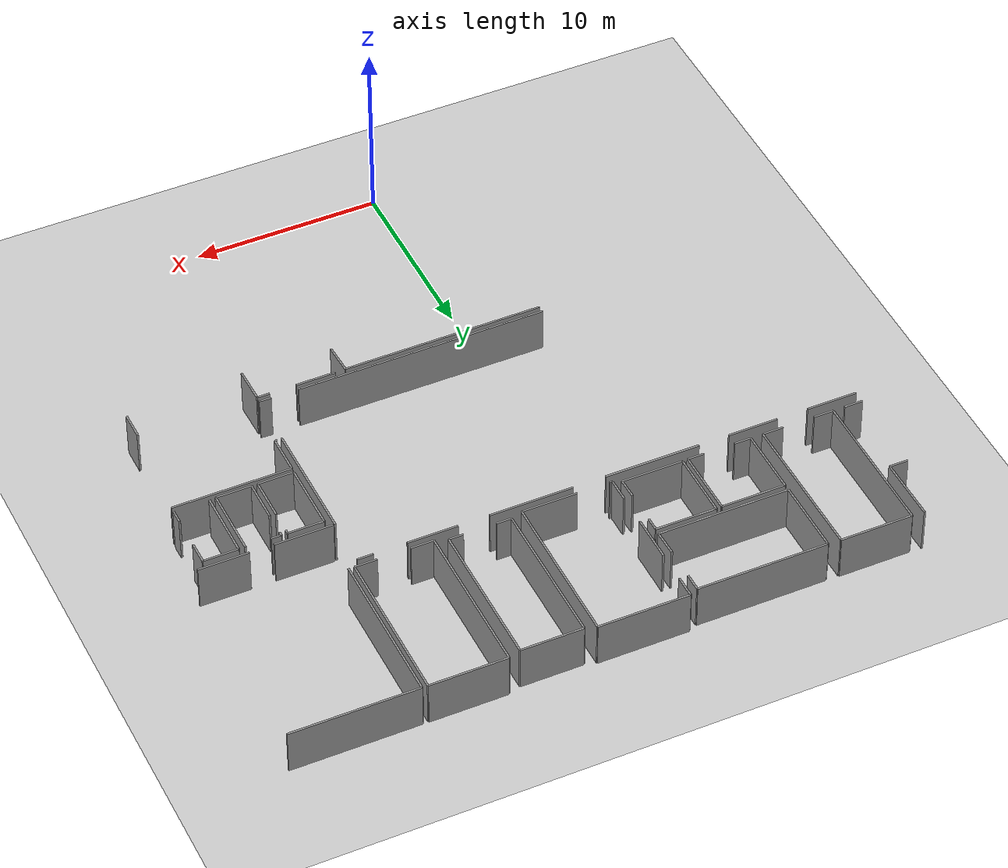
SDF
<sdf version="1.6">
 <world name="default">
  <model name="ground_plane">
   <static>1</static>
   <link name="link">
    <collision name="collision">
     <geometry><plane><normal>0 0 1</normal><size>100 100</size></plane></geometry>
     <surface><friction><ode><mu>100</mu><mu2>50</mu2></ode></friction></surface>
    </collision>
    <visual name="visual">
     <cast_shadows>0</cast_shadows>
     <geometry><plane><normal>0 0 1</normal><size>100 100</size></plane></geometry>
     <material>
      <script><uri>file://media/materials/scripts/gazebo.material</uri><name>Gazebo/Grey</name></script>
     </material>
    </visual>
   </link>
  </model>
  <model name="50053292">
   <static>1</static>
   <link name="Wall_155">
    <collision name="Wall_155_Collision">
     <geometry><box><size>2.1343883558 0.1 2.5</size></box></geometry>
     <pose>1.0671941779 0 1.25 0 0 0</pose>
    </collision>
    <visual name="Wall_155_Visual">
     <pose>1.0671941779 0 1.25 0 0 0</pose>
     <geometry><box><size>2.1343883558 0.1 2.5</size></box></geometry>
     <material>
      <script><uri>file://media/materials/scripts/gazebo.material</uri><name>Gazebo/Grey</name></script>
      <ambient>1 1 1 1</ambient>
     </material>
    </visual>
    <pose>56.5957744064 -22.429811582 0 0 0 0.0</pose>
   </link>
   <link name="Wall_156">
    <collision name="Wall_156_Collision">
     <geometry><box><size>0.66044745315 0.1 2.5</size></box></geometry>
     <pose>0.330223726575 0 1.25 0 0 0</pose>
    </collision>
    <visual name="Wall_156_Visual">
     <pose>0.330223726575 0 1.25 0 0 0</pose>
     <geometry><box><size>0.66044745315 0.1 2.5</size></box></geometry>
     <material>
      <script><uri>file://media/materials/scripts/gazebo.material</uri><name>Gazebo/Grey</name></script>
      <ambient>1 1 1 1</ambient>
     </material>
    </visual>
    <pose>60.1780667941 -22.429811582 0 0 0 0.0</pose>
   </link>
   <link name="Wall_157">
    <collision name="Wall_157_Collision">
     <geometry><box><size>1.94340563968 0.1 2.5</size></box></geometry>
     <pose>0.971702819838 0 1.25 0 0 0</pose>
    </collision>
    <visual name="Wall_157_Visual">
     <pose>0.971702819838 0 1.25 0 0 0</pose>
     <geometry><box><size>1.94340563968 0.1 2.5</size></box></geometry>
     <material>
      <script><uri>file://media/materials/scripts/gazebo.material</uri><name>Gazebo/Grey</name></script>
      <ambient>1 1 1 1</ambient>
     </material>
    </visual>
    <pose>60.8385142472 -22.429811582 0 0 0 -1.55772517584</pose>
   </link>
   <link name="Wall_162">
    <collision name="Wall_162_Collision">
     <geometry><box><size>1.46886053763 0.1 2.5</size></box></geometry>
     <pose>0.734430268815 0 1.25 0 0 0</pose>
    </collision>
    <visual name="Wall_162_Visual">
     <pose>0.734430268815 0 1.25 0 0 0</pose>
     <geometry><box><size>1.46886053763 0.1 2.5</size></box></geometry>
     <material>
      <script><uri>file://media/materials/scripts/gazebo.material</uri><name>Gazebo/Grey</name></script>
      <ambient>1 1 1 1</ambient>
     </material>
    </visual>
    <pose>67.2265652287 -22.4641040459 0 0 0 -1.57079632679</pose>
   </link>
   <link name="Wall_191">
    <collision name="Wall_191_Collision">
     <geometry><box><size>10.7835828004 0.1 2.5</size></box></geometry>
     <pose>5.39179140021 0 1.25 0 0 0</pose>
    </collision>
    <visual name="Wall_191_Visual">
     <pose>5.39179140021 0 1.25 0 0 0</pose>
     <geometry><box><size>10.7835828004 0.1 2.5</size></box></geometry>
     <material>
      <script><uri>file://media/materials/scripts/gazebo.material</uri><name>Gazebo/Grey</name></script>
      <ambient>1 1 1 1</ambient>
     </material>
    </visual>
    <pose>45.2468739879 -22.4496250056 0 0 0 0.0</pose>
   </link>
   <link name="Wall_192">
    <collision name="Wall_192_Collision">
     <geometry><box><size>1.66384185429 0.1 2.5</size></box></geometry>
     <pose>0.831920927146 0 1.25 0 0 0</pose>
    </collision>
    <visual name="Wall_192_Visual">
     <pose>0.831920927146 0 1.25 0 0 0</pose>
     <geometry><box><size>1.66384185429 0.1 2.5</size></box></geometry>
     <material>
      <script><uri>file://media/materials/scripts/gazebo.material</uri><name>Gazebo/Grey</name></script>
      <ambient>1 1 1 1</ambient>
     </material>
    </visual>
    <pose>56.0304567883 -22.4496250056 0 0 0 -1.52948742317</pose>
   </link>
   <link name="Wall_200">
    <collision name="Wall_200_Collision">
     <geometry><box><size>6.61552432542 0.1 2.5</size></box></geometry>
     <pose>3.30776216271 0 1.25 0 0 0</pose>
    </collision>
    <visual name="Wall_200_Visual">
     <pose>3.30776216271 0 1.25 0 0 0</pose>
     <geometry><box><size>6.61552432542 0.1 2.5</size></box></geometry>
     <material>
      <script><uri>file://media/materials/scripts/gazebo.material</uri><name>Gazebo/Grey</name></script>
      <ambient>1 1 1 1</ambient>
     </material>
    </visual>
    <pose>60.8753468937 -19.2280385346 0 0 0 1.57079632679</pose>
   </link>
   <link name="Wall_201">
    <collision name="Wall_201_Collision">
     <geometry><box><size>0.849691050302 0.1 2.5</size></box></geometry>
     <pose>0.424845525151 0 1.25 0 0 0</pose>
    </collision>
    <visual name="Wall_201_Visual">
     <pose>0.424845525151 0 1.25 0 0 0</pose>
     <geometry><box><size>0.849691050302 0.1 2.5</size></box></geometry>
     <material>
      <script><uri>file://media/materials/scripts/gazebo.material</uri><name>Gazebo/Grey</name></script>
      <ambient>1 1 1 1</ambient>
     </material>
    </visual>
    <pose>60.8753468937 -9.98291727261 0 0 0 3.14159265359</pose>
   </link>
   <link name="Wall_202">
    <collision name="Wall_202_Collision">
     <geometry><box><size>2.69259346284 0.1 2.5</size></box></geometry>
     <pose>1.34629673142 0 1.25 0 0 0</pose>
    </collision>
    <visual name="Wall_202_Visual">
     <pose>1.34629673142 0 1.25 0 0 0</pose>
     <geometry><box><size>2.69259346284 0.1 2.5</size></box></geometry>
     <material>
      <script><uri>file://media/materials/scripts/gazebo.material</uri><name>Gazebo/Grey</name></script>
      <ambient>1 1 1 1</ambient>
     </material>
    </visual>
    <pose>58.2348271723 -9.98291727261 0 0 0 3.14159265359</pose>
   </link>
   <link name="Wall_203">
    <collision name="Wall_203_Collision">
     <geometry><box><size>4.48481923426 0.1 2.5</size></box></geometry>
     <pose>2.24240961713 0 1.25 0 0 0</pose>
    </collision>
    <visual name="Wall_203_Visual">
     <pose>2.24240961713 0 1.25 0 0 0</pose>
     <geometry><box><size>4.48481923426 0.1 2.5</size></box></geometry>
     <material>
      <script><uri>file://media/materials/scripts/gazebo.material</uri><name>Gazebo/Grey</name></script>
      <ambient>1 1 1 1</ambient>
     </material>
    </visual>
    <pose>53.8469159009 -9.98291727261 0 0 0 3.14159265359</pose>
   </link>
   <link name="Wall_204">
    <collision name="Wall_204_Collision">
     <geometry><box><size>5.11897579841 0.1 2.5</size></box></geometry>
     <pose>2.55948789921 0 1.25 0 0 0</pose>
    </collision>
    <visual name="Wall_204_Visual">
     <pose>2.55948789921 0 1.25 0 0 0</pose>
     <geometry><box><size>5.11897579841 0.1 2.5</size></box></geometry>
     <material>
      <script><uri>file://media/materials/scripts/gazebo.material</uri><name>Gazebo/Grey</name></script>
      <ambient>1 1 1 1</ambient>
     </material>
    </visual>
    <pose>47.5884142276 -9.98291727261 0 0 0 3.14159265359</pose>
   </link>
   <link name="Wall_205">
    <collision name="Wall_205_Collision">
     <geometry><box><size>2.71367697769 0.1 2.5</size></box></geometry>
     <pose>1.35683848885 0 1.25 0 0 0</pose>
    </collision>
    <visual name="Wall_205_Visual">
     <pose>1.35683848885 0 1.25 0 0 0</pose>
     <geometry><box><size>2.71367697769 0.1 2.5</size></box></geometry>
     <material>
      <script><uri>file://media/materials/scripts/gazebo.material</uri><name>Gazebo/Grey</name></script>
      <ambient>1 1 1 1</ambient>
     </material>
    </visual>
    <pose>40.8212410062 -9.98291727261 0 0 0 3.14159265359</pose>
   </link>
   <link name="Wall_206">
    <collision name="Wall_206_Collision">
     <geometry><box><size>2.73895179369 0.1 2.5</size></box></geometry>
     <pose>1.36947589684 0 1.25 0 0 0</pose>
    </collision>
    <visual name="Wall_206_Visual">
     <pose>1.36947589684 0 1.25 0 0 0</pose>
     <geometry><box><size>2.73895179369 0.1 2.5</size></box></geometry>
     <material>
      <script><uri>file://media/materials/scripts/gazebo.material</uri><name>Gazebo/Grey</name></script>
      <ambient>1 1 1 1</ambient>
     </material>
    </visual>
    <pose>36.4240580686 -9.98291727261 0 0 0 3.14159265359</pose>
   </link>
   <link name="Wall_217">
    <collision name="Wall_217_Collision">
     <geometry><box><size>13.5292660778 0.1 2.5</size></box></geometry>
     <pose>6.76463303888 0 1.25 0 0 0</pose>
    </collision>
    <visual name="Wall_217_Visual">
     <pose>6.76463303888 0 1.25 0 0 0</pose>
     <geometry><box><size>13.5292660778 0.1 2.5</size></box></geometry>
     <material>
      <script><uri>file://media/materials/scripts/gazebo.material</uri><name>Gazebo/Grey</name></script>
      <ambient>1 1 1 1</ambient>
     </material>
    </visual>
    <pose>45.2262985095 -22.1039061657 0 0 0 0.0</pose>
   </link>
   <link name="Wall_218">
    <collision name="Wall_218_Collision">
     <geometry><box><size>0.643033054426 0.1 2.5</size></box></geometry>
     <pose>0.321516527213 0 1.25 0 0 0</pose>
    </collision>
    <visual name="Wall_218_Visual">
     <pose>0.321516527213 0 1.25 0 0 0</pose>
     <geometry><box><size>0.643033054426 0.1 2.5</size></box></geometry>
     <material>
      <script><uri>file://media/materials/scripts/gazebo.material</uri><name>Gazebo/Grey</name></script>
      <ambient>1 1 1 1</ambient>
     </material>
    </visual>
    <pose>60.2326807181 -22.1039061657 0 0 0 -0.0337816100418</pose>
   </link>
   <link name="Wall_220">
    <collision name="Wall_220_Collision">
     <geometry><box><size>0.111768030533 0.1 2.5</size></box></geometry>
     <pose>0.0558840152665 0 1.25 0 0 0</pose>
    </collision>
    <visual name="Wall_220_Visual">
     <pose>0.0558840152665 0 1.25 0 0 0</pose>
     <geometry><box><size>0.111768030533 0.1 2.5</size></box></geometry>
     <material>
      <script><uri>file://media/materials/scripts/gazebo.material</uri><name>Gazebo/Grey</name></script>
      <ambient>1 1 1 1</ambient>
     </material>
    </visual>
    <pose>61.1433361487 -19.2044148372 0 0 0 0.0</pose>
   </link>
   <link name="Wall_221">
    <collision name="Wall_221_Collision">
     <geometry><box><size>2.16169531781 0.1 2.5</size></box></geometry>
     <pose>1.0808476589 0 1.25 0 0 0</pose>
    </collision>
    <visual name="Wall_221_Visual">
     <pose>1.0808476589 0 1.25 0 0 0</pose>
     <geometry><box><size>2.16169531781 0.1 2.5</size></box></geometry>
     <material>
      <script><uri>file://media/materials/scripts/gazebo.material</uri><name>Gazebo/Grey</name></script>
      <ambient>1 1 1 1</ambient>
     </material>
    </visual>
    <pose>61.2551041792 -19.2044148372 0 0 0 1.57079632679</pose>
   </link>
   <link name="Wall_222">
    <collision name="Wall_222_Collision">
     <geometry><box><size>6.39109920048 0.1 2.5</size></box></geometry>
     <pose>3.19554960024 0 1.25 0 0 0</pose>
    </collision>
    <visual name="Wall_222_Visual">
     <pose>3.19554960024 0 1.25 0 0 0</pose>
     <geometry><box><size>6.39109920048 0.1 2.5</size></box></geometry>
     <material>
      <script><uri>file://media/materials/scripts/gazebo.material</uri><name>Gazebo/Grey</name></script>
      <ambient>1 1 1 1</ambient>
     </material>
    </visual>
    <pose>61.2551041792 -17.0427195194 0 0 0 0.0</pose>
   </link>
   <link name="Wall_241">
    <collision name="Wall_241_Collision">
     <geometry><box><size>1.00057789152 0.1 2.5</size></box></geometry>
     <pose>0.500288945761 0 1.25 0 0 0</pose>
    </collision>
    <visual name="Wall_241_Visual">
     <pose>0.500288945761 0 1.25 0 0 0</pose>
     <geometry><box><size>1.00057789152 0.1 2.5</size></box></geometry>
     <material>
      <script><uri>file://media/materials/scripts/gazebo.material</uri><name>Gazebo/Grey</name></script>
      <ambient>1 1 1 1</ambient>
     </material>
    </visual>
    <pose>34.6746343725 -9.33517073202 0 0 0 3.14159265359</pose>
   </link>
   <link name="Wall_247">
    <collision name="Wall_247_Collision">
     <geometry><box><size>1.00781741168 0.1 2.5</size></box></geometry>
     <pose>0.503908705841 0 1.25 0 0 0</pose>
    </collision>
    <visual name="Wall_247_Visual">
     <pose>0.503908705841 0 1.25 0 0 0</pose>
     <geometry><box><size>1.00781741168 0.1 2.5</size></box></geometry>
     <material>
      <script><uri>file://media/materials/scripts/gazebo.material</uri><name>Gazebo/Grey</name></script>
      <ambient>1 1 1 1</ambient>
     </material>
    </visual>
    <pose>34.67209419 -4.67139563978 0 0 0 3.14159265359</pose>
   </link>
   <link name="Wall_251">
    <collision name="Wall_251_Collision">
     <geometry><box><size>3.52838757435 0.1 2.5</size></box></geometry>
     <pose>1.76419378717 0 1.25 0 0 0</pose>
    </collision>
    <visual name="Wall_251_Visual">
     <pose>1.76419378717 0 1.25 0 0 0</pose>
     <geometry><box><size>3.52838757435 0.1 2.5</size></box></geometry>
     <material>
      <script><uri>file://media/materials/scripts/gazebo.material</uri><name>Gazebo/Grey</name></script>
      <ambient>1 1 1 1</ambient>
     </material>
    </visual>
    <pose>34.6492325474 -1.14308213045 0 0 0 -1.56431693583</pose>
   </link>
   <link name="Wall_252">
    <collision name="Wall_252_Collision">
     <geometry><box><size>1.12110955172 0.1 2.5</size></box></geometry>
     <pose>0.560554775861 0 1.25 0 0 0</pose>
    </collision>
    <visual name="Wall_252_Visual">
     <pose>0.560554775861 0 1.25 0 0 0</pose>
     <geometry><box><size>1.12110955172 0.1 2.5</size></box></geometry>
     <material>
      <script><uri>file://media/materials/scripts/gazebo.material</uri><name>Gazebo/Grey</name></script>
      <ambient>1 1 1 1</ambient>
     </material>
    </visual>
    <pose>39.2503921407 -9.34164819742 0 0 0 3.14159265359</pose>
   </link>
   <link name="Wall_253">
    <collision name="Wall_253_Collision">
     <geometry><box><size>1.0808476589 0.1 2.5</size></box></geometry>
     <pose>0.540423829452 0 1.25 0 0 0</pose>
    </collision>
    <visual name="Wall_253_Visual">
     <pose>0.540423829452 0 1.25 0 0 0</pose>
     <geometry><box><size>1.0808476589 0.1 2.5</size></box></geometry>
     <material>
      <script><uri>file://media/materials/scripts/gazebo.material</uri><name>Gazebo/Grey</name></script>
      <ambient>1 1 1 1</ambient>
     </material>
    </visual>
    <pose>36.3956080244 -9.34164819742 0 0 0 3.14159265359</pose>
   </link>
   <link name="Wall_254">
    <collision name="Wall_254_Collision">
     <geometry><box><size>8.11728022658 0.1 2.5</size></box></geometry>
     <pose>4.05864011329 0 1.25 0 0 0</pose>
    </collision>
    <visual name="Wall_254_Visual">
     <pose>4.05864011329 0 1.25 0 0 0</pose>
     <geometry><box><size>8.11728022658 0.1 2.5</size></box></geometry>
     <material>
      <script><uri>file://media/materials/scripts/gazebo.material</uri><name>Gazebo/Grey</name></script>
      <ambient>1 1 1 1</ambient>
     </material>
    </visual>
    <pose>35.3147603655 -9.34164819742 0 0 0 1.57079632679</pose>
   </link>
   <link name="Wall_255">
    <collision name="Wall_255_Collision">
     <geometry><box><size>3.89981520172 0.1 2.5</size></box></geometry>
     <pose>1.94990760086 0 1.25 0 0 0</pose>
    </collision>
    <visual name="Wall_255_Visual">
     <pose>1.94990760086 0 1.25 0 0 0</pose>
     <geometry><box><size>3.89981520172 0.1 2.5</size></box></geometry>
     <material>
      <script><uri>file://media/materials/scripts/gazebo.material</uri><name>Gazebo/Grey</name></script>
      <ambient>1 1 1 1</ambient>
     </material>
    </visual>
    <pose>35.3147603655 -1.22436797084 0 0 0 0.0</pose>
   </link>
   <link name="Wall_256">
    <collision name="Wall_256_Collision">
     <geometry><box><size>8.11735924447 0.1 2.5</size></box></geometry>
     <pose>4.05867962224 0 1.25 0 0 0</pose>
    </collision>
    <visual name="Wall_256_Visual">
     <pose>4.05867962224 0 1.25 0 0 0</pose>
     <geometry><box><size>8.11735924447 0.1 2.5</size></box></geometry>
     <material>
      <script><uri>file://media/materials/scripts/gazebo.material</uri><name>Gazebo/Grey</name></script>
      <ambient>1 1 1 1</ambient>
     </material>
    </visual>
    <pose>39.2145755673 -1.22436797084 0 0 0 -1.56638396946</pose>
   </link>
   <link name="Wall_257">
    <collision name="Wall_257_Collision">
     <geometry><box><size>0.905575065568 0.1 2.5</size></box></geometry>
     <pose>0.452787532784 0 1.25 0 0 0</pose>
    </collision>
    <visual name="Wall_257_Visual">
     <pose>0.452787532784 0 1.25 0 0 0</pose>
     <geometry><box><size>0.905575065568 0.1 2.5</size></box></geometry>
     <material>
      <script><uri>file://media/materials/scripts/gazebo.material</uri><name>Gazebo/Grey</name></script>
      <ambient>1 1 1 1</ambient>
     </material>
    </visual>
    <pose>43.4039715754 -9.35447611911 0 0 0 3.14159265359</pose>
   </link>
   <link name="Wall_258">
    <collision name="Wall_258_Collision">
     <geometry><box><size>0.9017647918 0.1 2.5</size></box></geometry>
     <pose>0.4508823959 0 1.25 0 0 0</pose>
    </collision>
    <visual name="Wall_258_Visual">
     <pose>0.4508823959 0 1.25 0 0 0</pose>
     <geometry><box><size>0.9017647918 0.1 2.5</size></box></geometry>
     <material>
      <script><uri>file://media/materials/scripts/gazebo.material</uri><name>Gazebo/Grey</name></script>
      <ambient>1 1 1 1</ambient>
     </material>
    </visual>
    <pose>40.8218760518 -9.35447611911 0 0 0 3.14159265359</pose>
   </link>
   <link name="Wall_259">
    <collision name="Wall_259_Collision">
     <geometry><box><size>3.65176637941 0.1 2.5</size></box></geometry>
     <pose>1.82588318971 0 1.25 0 0 0</pose>
    </collision>
    <visual name="Wall_259_Visual">
     <pose>1.82588318971 0 1.25 0 0 0</pose>
     <geometry><box><size>3.65176637941 0.1 2.5</size></box></geometry>
     <material>
      <script><uri>file://media/materials/scripts/gazebo.material</uri><name>Gazebo/Grey</name></script>
      <ambient>1 1 1 1</ambient>
     </material>
    </visual>
    <pose>39.92011126 -9.35447611911 0 0 0 1.57079632679</pose>
   </link>
   <link name="Wall_260">
    <collision name="Wall_260_Collision">
     <geometry><box><size>3.46734912903 0.1 2.5</size></box></geometry>
     <pose>1.73367456452 0 1.25 0 0 0</pose>
    </collision>
    <visual name="Wall_260_Visual">
     <pose>1.73367456452 0 1.25 0 0 0</pose>
     <geometry><box><size>3.46734912903 0.1 2.5</size></box></geometry>
     <material>
      <script><uri>file://media/materials/scripts/gazebo.material</uri><name>Gazebo/Grey</name></script>
      <ambient>1 1 1 1</ambient>
     </material>
    </visual>
    <pose>39.92011126 -5.70270973969 0 0 0 0.0</pose>
   </link>
   <link name="Wall_261">
    <collision name="Wall_261_Collision">
     <geometry><box><size>3.65180370627 0.1 2.5</size></box></geometry>
     <pose>1.82590185313 0 1.25 0 0 0</pose>
    </collision>
    <visual name="Wall_261_Visual">
     <pose>1.82590185313 0 1.25 0 0 0</pose>
     <geometry><box><size>3.65180370627 0.1 2.5</size></box></geometry>
     <material>
      <script><uri>file://media/materials/scripts/gazebo.material</uri><name>Gazebo/Grey</name></script>
      <ambient>1 1 1 1</ambient>
     </material>
    </visual>
    <pose>43.387460389 -5.70270973969 0 0 0 -1.56627493301</pose>
   </link>
   <link name="Wall_262">
    <collision name="Wall_262_Collision">
     <geometry><box><size>2.98928678026 0.1 2.5</size></box></geometry>
     <pose>1.49464339013 0 1.25 0 0 0</pose>
    </collision>
    <visual name="Wall_262_Visual">
     <pose>1.49464339013 0 1.25 0 0 0</pose>
     <geometry><box><size>2.98928678026 0.1 2.5</size></box></geometry>
     <material>
      <script><uri>file://media/materials/scripts/gazebo.material</uri><name>Gazebo/Grey</name></script>
      <ambient>1 1 1 1</ambient>
     </material>
    </visual>
    <pose>52.3351262788 -9.54321167976 0 0 0 3.14159265359</pose>
   </link>
   <link name="Wall_263">
    <collision name="Wall_263_Collision">
     <geometry><box><size>0.143520311934 0.1 2.5</size></box></geometry>
     <pose>0.0717601559672 0 1.25 0 0 0</pose>
    </collision>
    <visual name="Wall_263_Visual">
     <pose>0.0717601559672 0 1.25 0 0 0</pose>
     <geometry><box><size>0.143520311934 0.1 2.5</size></box></geometry>
     <material>
      <script><uri>file://media/materials/scripts/gazebo.material</uri><name>Gazebo/Grey</name></script>
      <ambient>1 1 1 1</ambient>
     </material>
    </visual>
    <pose>47.578761534 -9.54321167976 0 0 0 3.14159265359</pose>
   </link>
   <link name="Wall_264">
    <collision name="Wall_264_Collision">
     <geometry><box><size>1.31517949565 0.1 2.5</size></box></geometry>
     <pose>0.657589747823 0 1.25 0 0 0</pose>
    </collision>
    <visual name="Wall_264_Visual">
     <pose>0.657589747823 0 1.25 0 0 0</pose>
     <geometry><box><size>1.31517949565 0.1 2.5</size></box></geometry>
     <material>
      <script><uri>file://media/materials/scripts/gazebo.material</uri><name>Gazebo/Grey</name></script>
      <ambient>1 1 1 1</ambient>
     </material>
    </visual>
    <pose>47.4352412221 -9.54321167976 0 0 0 1.57079632679</pose>
   </link>
   <link name="Wall_265">
    <collision name="Wall_265_Collision">
     <geometry><box><size>2.54500885889 0.1 2.5</size></box></geometry>
     <pose>1.27250442944 0 1.25 0 0 0</pose>
    </collision>
    <visual name="Wall_265_Visual">
     <pose>1.27250442944 0 1.25 0 0 0</pose>
     <geometry><box><size>2.54500885889 0.1 2.5</size></box></geometry>
     <material>
      <script><uri>file://media/materials/scripts/gazebo.material</uri><name>Gazebo/Grey</name></script>
      <ambient>1 1 1 1</ambient>
     </material>
    </visual>
    <pose>47.4352412221 -6.49791387511 0 0 0 1.57079632679</pose>
   </link>
   <link name="Wall_266">
    <collision name="Wall_266_Collision">
     <geometry><box><size>1.1909645708 0.1 2.5</size></box></geometry>
     <pose>0.595482285402 0 1.25 0 0 0</pose>
    </collision>
    <visual name="Wall_266_Visual">
     <pose>0.595482285402 0 1.25 0 0 0</pose>
     <geometry><box><size>1.1909645708 0.1 2.5</size></box></geometry>
     <material>
      <script><uri>file://media/materials/scripts/gazebo.material</uri><name>Gazebo/Grey</name></script>
      <ambient>1 1 1 1</ambient>
     </material>
    </visual>
    <pose>47.4352412221 -2.2434891947 0 0 0 1.57079632679</pose>
   </link>
   <link name="Wall_267">
    <collision name="Wall_267_Collision">
     <geometry><box><size>4.93379649328 0.1 2.5</size></box></geometry>
     <pose>2.46689824664 0 1.25 0 0 0</pose>
    </collision>
    <visual name="Wall_267_Visual">
     <pose>2.46689824664 0 1.25 0 0 0</pose>
     <geometry><box><size>4.93379649328 0.1 2.5</size></box></geometry>
     <material>
      <script><uri>file://media/materials/scripts/gazebo.material</uri><name>Gazebo/Grey</name></script>
      <ambient>1 1 1 1</ambient>
     </material>
    </visual>
    <pose>47.4352412221 -1.05252462389 0 0 0 0.0</pose>
   </link>
   <link name="Wall_268">
    <collision name="Wall_268_Collision">
     <geometry><box><size>8.490754776 0.1 2.5</size></box></geometry>
     <pose>4.245377388 0 1.25 0 0 0</pose>
    </collision>
    <visual name="Wall_268_Visual">
     <pose>4.245377388 0 1.25 0 0 0</pose>
     <geometry><box><size>8.490754776 0.1 2.5</size></box></geometry>
     <material>
      <script><uri>file://media/materials/scripts/gazebo.material</uri><name>Gazebo/Grey</name></script>
      <ambient>1 1 1 1</ambient>
     </material>
    </visual>
    <pose>52.3690377154 -1.05252462389 0 0 0 -1.57479026227</pose>
   </link>
   <link name="Wall_269">
    <collision name="Wall_269_Collision">
     <geometry><box><size>3.31493817831 0.1 2.5</size></box></geometry>
     <pose>1.65746908915 0 1.25 0 0 0</pose>
    </collision>
    <visual name="Wall_269_Visual">
     <pose>1.65746908915 0 1.25 0 0 0</pose>
     <geometry><box><size>3.31493817831 0.1 2.5</size></box></geometry>
     <material>
      <script><uri>file://media/materials/scripts/gazebo.material</uri><name>Gazebo/Grey</name></script>
      <ambient>1 1 1 1</ambient>
     </material>
    </visual>
    <pose>47.0072204688 -9.33517073202 0 0 0 3.14159265359</pose>
   </link>
   <link name="Wall_270">
    <collision name="Wall_270_Collision">
     <geometry><box><size>3.64516190488 0.1 2.5</size></box></geometry>
     <pose>1.82258095244 0 1.25 0 0 0</pose>
    </collision>
    <visual name="Wall_270_Visual">
     <pose>1.82258095244 0 1.25 0 0 0</pose>
     <geometry><box><size>3.64516190488 0.1 2.5</size></box></geometry>
     <material>
      <script><uri>file://media/materials/scripts/gazebo.material</uri><name>Gazebo/Grey</name></script>
      <ambient>1 1 1 1</ambient>
     </material>
    </visual>
    <pose>43.6922822905 -9.33517073202 0 0 0 1.57079632679</pose>
   </link>
   <link name="Wall_271">
    <collision name="Wall_271_Collision">
     <geometry><box><size>3.28572607942 0.1 2.5</size></box></geometry>
     <pose>1.64286303971 0 1.25 0 0 0</pose>
    </collision>
    <visual name="Wall_271_Visual">
     <pose>1.64286303971 0 1.25 0 0 0</pose>
     <geometry><box><size>3.28572607942 0.1 2.5</size></box></geometry>
     <material>
      <script><uri>file://media/materials/scripts/gazebo.material</uri><name>Gazebo/Grey</name></script>
      <ambient>1 1 1 1</ambient>
     </material>
    </visual>
    <pose>43.6922822905 -5.69000882713 0 0 0 0.0</pose>
   </link>
   <link name="Wall_272">
    <collision name="Wall_272_Collision">
     <geometry><box><size>0.773231556687 0.1 2.5</size></box></geometry>
     <pose>0.386615778344 0 1.25 0 0 0</pose>
    </collision>
    <visual name="Wall_272_Visual">
     <pose>0.386615778344 0 1.25 0 0 0</pose>
     <geometry><box><size>0.773231556687 0.1 2.5</size></box></geometry>
     <material>
      <script><uri>file://media/materials/scripts/gazebo.material</uri><name>Gazebo/Grey</name></script>
      <ambient>1 1 1 1</ambient>
     </material>
    </visual>
    <pose>46.9780083699 -5.69000882713 0 0 0 -1.57079632679</pose>
   </link>
   <link name="Wall_273">
    <collision name="Wall_273_Collision">
     <geometry><box><size>1.12821928179 0.1 2.5</size></box></geometry>
     <pose>0.564109640895 0 1.25 0 0 0</pose>
    </collision>
    <visual name="Wall_273_Visual">
     <pose>0.564109640895 0 1.25 0 0 0</pose>
     <geometry><box><size>1.12821928179 0.1 2.5</size></box></geometry>
     <material>
      <script><uri>file://media/materials/scripts/gazebo.material</uri><name>Gazebo/Grey</name></script>
      <ambient>1 1 1 1</ambient>
     </material>
    </visual>
    <pose>46.9780083699 -8.20732969664 0 0 0 -1.54490121549</pose>
   </link>
   <link name="Wall_274">
    <collision name="Wall_274_Collision">
     <geometry><box><size>7.08647416317 0.1 2.5</size></box></geometry>
     <pose>3.54323708158 0 1.25 0 0 0</pose>
    </collision>
    <visual name="Wall_274_Visual">
     <pose>3.54323708158 0 1.25 0 0 0</pose>
     <geometry><box><size>7.08647416317 0.1 2.5</size></box></geometry>
     <material>
      <script><uri>file://media/materials/scripts/gazebo.material</uri><name>Gazebo/Grey</name></script>
      <ambient>1 1 1 1</ambient>
     </material>
    </visual>
    <pose>46.9995999213 -5.35787996368 0 0 0 3.14159265359</pose>
   </link>
   <link name="Wall_275">
    <collision name="Wall_275_Collision">
     <geometry><box><size>4.09731439204 0.1 2.5</size></box></geometry>
     <pose>2.04865719602 0 1.25 0 0 0</pose>
    </collision>
    <visual name="Wall_275_Visual">
     <pose>2.04865719602 0 1.25 0 0 0</pose>
     <geometry><box><size>4.09731439204 0.1 2.5</size></box></geometry>
     <material>
      <script><uri>file://media/materials/scripts/gazebo.material</uri><name>Gazebo/Grey</name></script>
      <ambient>1 1 1 1</ambient>
     </material>
    </visual>
    <pose>39.9131257581 -5.35787996368 0 0 0 1.57079632679</pose>
   </link>
   <link name="Wall_276">
    <collision name="Wall_276_Collision">
     <geometry><box><size>7.05662701865 0.1 2.5</size></box></geometry>
     <pose>3.52831350933 0 1.25 0 0 0</pose>
    </collision>
    <visual name="Wall_276_Visual">
     <pose>3.52831350933 0 1.25 0 0 0</pose>
     <geometry><box><size>7.05662701865 0.1 2.5</size></box></geometry>
     <material>
      <script><uri>file://media/materials/scripts/gazebo.material</uri><name>Gazebo/Grey</name></script>
      <ambient>1 1 1 1</ambient>
     </material>
    </visual>
    <pose>39.9131257581 -1.26056557164 0 0 0 0.0</pose>
   </link>
   <link name="Wall_277">
    <collision name="Wall_277_Collision">
     <geometry><box><size>0.960315998705 0.1 2.5</size></box></geometry>
     <pose>0.480157999352 0 1.25 0 0 0</pose>
    </collision>
    <visual name="Wall_277_Visual">
     <pose>0.480157999352 0 1.25 0 0 0</pose>
     <geometry><box><size>0.960315998705 0.1 2.5</size></box></geometry>
     <material>
      <script><uri>file://media/materials/scripts/gazebo.material</uri><name>Gazebo/Grey</name></script>
      <ambient>1 1 1 1</ambient>
     </material>
    </visual>
    <pose>46.9697527767 -1.26056557164 0 0 0 -1.57079632679</pose>
   </link>
   <link name="Wall_278">
    <collision name="Wall_278_Collision">
     <geometry><box><size>1.38357836212 0.1 2.5</size></box></geometry>
     <pose>0.691789181061 0 1.25 0 0 0</pose>
    </collision>
    <visual name="Wall_278_Visual">
     <pose>0.691789181061 0 1.25 0 0 0</pose>
     <geometry><box><size>1.38357836212 0.1 2.5</size></box></geometry>
     <material>
      <script><uri>file://media/materials/scripts/gazebo.material</uri><name>Gazebo/Grey</name></script>
      <ambient>1 1 1 1</ambient>
     </material>
    </visual>
    <pose>46.9697527767 -3.9746235767 0 0 0 -1.54922222531</pose>
   </link>
   <link name="Wall_279">
    <collision name="Wall_279_Collision">
     <geometry><box><size>0.774755666195 0.1 2.5</size></box></geometry>
     <pose>0.387377833097 0 1.25 0 0 0</pose>
    </collision>
    <visual name="Wall_279_Visual">
     <pose>0.387377833097 0 1.25 0 0 0</pose>
     <geometry><box><size>0.774755666195 0.1 2.5</size></box></geometry>
     <material>
      <script><uri>file://media/materials/scripts/gazebo.material</uri><name>Gazebo/Grey</name></script>
      <ambient>1 1 1 1</ambient>
     </material>
    </visual>
    <pose>56.3296902882 -9.33517073202 0 0 0 3.14159265359</pose>
   </link>
   <link name="Wall_280">
    <collision name="Wall_280_Collision">
     <geometry><box><size>0.811334294369 0.1 2.5</size></box></geometry>
     <pose>0.405667147185 0 1.25 0 0 0</pose>
    </collision>
    <visual name="Wall_280_Visual">
     <pose>0.405667147185 0 1.25 0 0 0</pose>
     <geometry><box><size>0.811334294369 0.1 2.5</size></box></geometry>
     <material>
      <script><uri>file://media/materials/scripts/gazebo.material</uri><name>Gazebo/Grey</name></script>
      <ambient>1 1 1 1</ambient>
     </material>
    </visual>
    <pose>53.7889997396 -9.33517073202 0 0 0 3.14159265359</pose>
   </link>
   <link name="Wall_281">
    <collision name="Wall_281_Collision">
     <geometry><box><size>8.09048130108 0.1 2.5</size></box></geometry>
     <pose>4.04524065054 0 1.25 0 0 0</pose>
    </collision>
    <visual name="Wall_281_Visual">
     <pose>4.04524065054 0 1.25 0 0 0</pose>
     <geometry><box><size>8.09048130108 0.1 2.5</size></box></geometry>
     <material>
      <script><uri>file://media/materials/scripts/gazebo.material</uri><name>Gazebo/Grey</name></script>
      <ambient>1 1 1 1</ambient>
     </material>
    </visual>
    <pose>52.9776654453 -9.33517073202 0 0 0 1.57079632679</pose>
   </link>
   <link name="Wall_282">
    <collision name="Wall_282_Collision">
     <geometry><box><size>3.35774025364 0.1 2.5</size></box></geometry>
     <pose>1.67887012682 0 1.25 0 0 0</pose>
    </collision>
    <visual name="Wall_282_Visual">
     <pose>1.67887012682 0 1.25 0 0 0</pose>
     <geometry><box><size>3.35774025364 0.1 2.5</size></box></geometry>
     <material>
      <script><uri>file://media/materials/scripts/gazebo.material</uri><name>Gazebo/Grey</name></script>
      <ambient>1 1 1 1</ambient>
     </material>
    </visual>
    <pose>52.9776654453 -1.24468943094 0 0 0 0.0</pose>
   </link>
   <link name="Wall_283">
    <collision name="Wall_283_Collision">
     <geometry><box><size>8.09048331987 0.1 2.5</size></box></geometry>
     <pose>4.04524165993 0 1.25 0 0 0</pose>
    </collision>
    <visual name="Wall_283_Visual">
     <pose>4.04524165993 0 1.25 0 0 0</pose>
     <geometry><box><size>8.09048331987 0.1 2.5</size></box></geometry>
     <material>
      <script><uri>file://media/materials/scripts/gazebo.material</uri><name>Gazebo/Grey</name></script>
      <ambient>1 1 1 1</ambient>
     </material>
    </visual>
    <pose>56.3354056989 -1.24468943094 0 0 0 -1.5715027631</pose>
   </link>
   <link name="Wall_284">
    <collision name="Wall_284_Collision">
     <geometry><box><size>1.19680699058 0.1 2.5</size></box></geometry>
     <pose>0.598403495291 0 1.25 0 0 0</pose>
    </collision>
    <visual name="Wall_284_Visual">
     <pose>0.598403495291 0 1.25 0 0 0</pose>
     <geometry><box><size>1.19680699058 0.1 2.5</size></box></geometry>
     <material>
      <script><uri>file://media/materials/scripts/gazebo.material</uri><name>Gazebo/Grey</name></script>
      <ambient>1 1 1 1</ambient>
     </material>
    </visual>
    <pose>61.1941397989 -9.57648807067 0 0 0 3.14159265359</pose>
   </link>
   <link name="Wall_285">
    <collision name="Wall_285_Collision">
     <geometry><box><size>1.23694187427 0.1 2.5</size></box></geometry>
     <pose>0.618470937137 0 1.25 0 0 0</pose>
    </collision>
    <visual name="Wall_285_Visual">
     <pose>0.618470937137 0 1.25 0 0 0</pose>
     <geometry><box><size>1.23694187427 0.1 2.5</size></box></geometry>
     <material>
      <script><uri>file://media/materials/scripts/gazebo.material</uri><name>Gazebo/Grey</name></script>
      <ambient>1 1 1 1</ambient>
     </material>
    </visual>
    <pose>58.236478291 -9.57648807067 0 0 0 3.14159265359</pose>
   </link>
   <link name="Wall_286">
    <collision name="Wall_286_Collision">
     <geometry><box><size>8.54314182474 0.1 2.5</size></box></geometry>
     <pose>4.27157091237 0 1.25 0 0 0</pose>
    </collision>
    <visual name="Wall_286_Visual">
     <pose>4.27157091237 0 1.25 0 0 0</pose>
     <geometry><box><size>8.54314182474 0.1 2.5</size></box></geometry>
     <material>
      <script><uri>file://media/materials/scripts/gazebo.material</uri><name>Gazebo/Grey</name></script>
      <ambient>1 1 1 1</ambient>
     </material>
    </visual>
    <pose>56.9995364167 -9.57648807067 0 0 0 1.57079632679</pose>
   </link>
   <link name="Wall_287">
    <collision name="Wall_287_Collision">
     <geometry><box><size>4.19536543701 0.1 2.5</size></box></geometry>
     <pose>2.0976827185 0 1.25 0 0 0</pose>
    </collision>
    <visual name="Wall_287_Visual">
     <pose>2.0976827185 0 1.25 0 0 0</pose>
     <geometry><box><size>4.19536543701 0.1 2.5</size></box></geometry>
     <material>
      <script><uri>file://media/materials/scripts/gazebo.material</uri><name>Gazebo/Grey</name></script>
      <ambient>1 1 1 1</ambient>
     </material>
    </visual>
    <pose>56.9995364167 -1.03334624593 0 0 0 0.0</pose>
   </link>
   <link name="Wall_288">
    <collision name="Wall_288_Collision">
     <geometry><box><size>8.54314185873 0.1 2.5</size></box></geometry>
     <pose>4.27157092936 0 1.25 0 0 0</pose>
    </collision>
    <visual name="Wall_288_Visual">
     <pose>4.27157092936 0 1.25 0 0 0</pose>
     <geometry><box><size>8.54314185873 0.1 2.5</size></box></geometry>
     <material>
      <script><uri>file://media/materials/scripts/gazebo.material</uri><name>Gazebo/Grey</name></script>
      <ambient>1 1 1 1</ambient>
     </material>
    </visual>
    <pose>61.1949018537 -1.03334624593 0 0 0 -1.57088552756</pose>
   </link>
   <link name="Wall_293">
    <collision name="Wall_293_Collision">
     <geometry><box><size>3.11985216138 0.1 2.5</size></box></geometry>
     <pose>1.55992608069 0 1.25 0 0 0</pose>
    </collision>
    <visual name="Wall_293_Visual">
     <pose>1.55992608069 0 1.25 0 0 0</pose>
     <geometry><box><size>3.11985216138 0.1 2.5</size></box></geometry>
     <material>
      <script><uri>file://media/materials/scripts/gazebo.material</uri><name>Gazebo/Grey</name></script>
      <ambient>1 1 1 1</ambient>
     </material>
    </visual>
    <pose>60.9754300847 -12.615435419 0 0 0 0.0</pose>
   </link>
   <link name="Wall_294">
    <collision name="Wall_294_Collision">
     <geometry><box><size>2.70135709251 0.1 2.5</size></box></geometry>
     <pose>1.35067854625 0 1.25 0 0 0</pose>
    </collision>
    <visual name="Wall_294_Visual">
     <pose>1.35067854625 0 1.25 0 0 0</pose>
     <geometry><box><size>2.70135709251 0.1 2.5</size></box></geometry>
     <material>
      <script><uri>file://media/materials/scripts/gazebo.material</uri><name>Gazebo/Grey</name></script>
      <ambient>1 1 1 1</ambient>
     </material>
    </visual>
    <pose>65.379471515 -12.615435419 0 0 0 0.0</pose>
   </link>
   <link name="Wall_297">
    <collision name="Wall_297_Collision">
     <geometry><box><size>1.88379935098 0.1 2.5</size></box></geometry>
     <pose>0.941899675492 0 1.25 0 0 0</pose>
    </collision>
    <visual name="Wall_297_Visual">
     <pose>0.941899675492 0 1.25 0 0 0</pose>
     <geometry><box><size>1.88379935098 0.1 2.5</size></box></geometry>
     <material>
      <script><uri>file://media/materials/scripts/gazebo.material</uri><name>Gazebo/Grey</name></script>
      <ambient>1 1 1 1</ambient>
     </material>
    </visual>
    <pose>65.4042382945 -16.7762543739 0 0 0 3.14159265359</pose>
   </link>
   <link name="Wall_298">
    <collision name="Wall_298_Collision">
     <geometry><box><size>2.27854371337 0.1 2.5</size></box></geometry>
     <pose>1.13927185668 0 1.25 0 0 0</pose>
    </collision>
    <visual name="Wall_298_Visual">
     <pose>1.13927185668 0 1.25 0 0 0</pose>
     <geometry><box><size>2.27854371337 0.1 2.5</size></box></geometry>
     <material>
      <script><uri>file://media/materials/scripts/gazebo.material</uri><name>Gazebo/Grey</name></script>
      <ambient>1 1 1 1</ambient>
     </material>
    </visual>
    <pose>63.5204389435 -16.7762543739 0 0 0 1.57079632679</pose>
   </link>
   <link name="Wall_299">
    <collision name="Wall_299_Collision">
     <geometry><box><size>0.232299690733 0.1 2.5</size></box></geometry>
     <pose>0.116149845366 0 1.25 0 0 0</pose>
    </collision>
    <visual name="Wall_299_Visual">
     <pose>0.116149845366 0 1.25 0 0 0</pose>
     <geometry><box><size>0.232299690733 0.1 2.5</size></box></geometry>
     <material>
      <script><uri>file://media/materials/scripts/gazebo.material</uri><name>Gazebo/Grey</name></script>
      <ambient>1 1 1 1</ambient>
     </material>
    </visual>
    <pose>63.5204389435 -13.2776609999 0 0 0 1.57079632679</pose>
   </link>
   <link name="Wall_300">
    <collision name="Wall_300_Collision">
     <geometry><box><size>0.544615130597 0.1 2.5</size></box></geometry>
     <pose>0.272307565299 0 1.25 0 0 0</pose>
    </collision>
    <visual name="Wall_300_Visual">
     <pose>0.272307565299 0 1.25 0 0 0</pose>
     <geometry><box><size>0.544615130597 0.1 2.5</size></box></geometry>
     <material>
      <script><uri>file://media/materials/scripts/gazebo.material</uri><name>Gazebo/Grey</name></script>
      <ambient>1 1 1 1</ambient>
     </material>
    </visual>
    <pose>63.5204389435 -13.0453613092 0 0 0 0.0</pose>
   </link>
   <link name="Wall_301">
    <collision name="Wall_301_Collision">
     <geometry><box><size>3.73089306467 0.1 2.5</size></box></geometry>
     <pose>1.86544653233 0 1.25 0 0 0</pose>
    </collision>
    <visual name="Wall_301_Visual">
     <pose>1.86544653233 0 1.25 0 0 0</pose>
     <geometry><box><size>3.73089306467 0.1 2.5</size></box></geometry>
     <material>
      <script><uri>file://media/materials/scripts/gazebo.material</uri><name>Gazebo/Grey</name></script>
      <ambient>1 1 1 1</ambient>
     </material>
    </visual>
    <pose>65.4042382945 -13.0453613092 0 0 0 -1.57079632679</pose>
   </link>
   <link name="Wall_302">
    <collision name="Wall_302_Collision">
     <geometry><box><size>1.92177507954 0.1 2.5</size></box></geometry>
     <pose>0.96088753977 0 1.25 0 0 0</pose>
    </collision>
    <visual name="Wall_302_Visual">
     <pose>0.96088753977 0 1.25 0 0 0</pose>
     <geometry><box><size>1.92177507954 0.1 2.5</size></box></geometry>
     <material>
      <script><uri>file://media/materials/scripts/gazebo.material</uri><name>Gazebo/Grey</name></script>
      <ambient>1 1 1 1</ambient>
     </material>
    </visual>
    <pose>63.1954225911 -16.7762543739 0 0 0 3.14159265359</pose>
   </link>
   <link name="Wall_303">
    <collision name="Wall_303_Collision">
     <geometry><box><size>3.7439750046 0.1 2.5</size></box></geometry>
     <pose>1.8719875023 0 1.25 0 0 0</pose>
    </collision>
    <visual name="Wall_303_Visual">
     <pose>1.8719875023 0 1.25 0 0 0</pose>
     <geometry><box><size>3.7439750046 0.1 2.5</size></box></geometry>
     <material>
      <script><uri>file://media/materials/scripts/gazebo.material</uri><name>Gazebo/Grey</name></script>
      <ambient>1 1 1 1</ambient>
     </material>
    </visual>
    <pose>61.2736475116 -16.7762543739 0 0 0 1.57079632679</pose>
   </link>
   <link name="Wall_304">
    <collision name="Wall_304_Collision">
     <geometry><box><size>1.92177507954 0.1 2.5</size></box></geometry>
     <pose>0.96088753977 0 1.25 0 0 0</pose>
    </collision>
    <visual name="Wall_304_Visual">
     <pose>0.96088753977 0 1.25 0 0 0</pose>
     <geometry><box><size>1.92177507954 0.1 2.5</size></box></geometry>
     <material>
      <script><uri>file://media/materials/scripts/gazebo.material</uri><name>Gazebo/Grey</name></script>
      <ambient>1 1 1 1</ambient>
     </material>
    </visual>
    <pose>61.2736475116 -13.0322793693 0 0 0 0.0</pose>
   </link>
   <link name="Wall_305">
    <collision name="Wall_305_Collision">
     <geometry><box><size>0.231918663356 0.1 2.5</size></box></geometry>
     <pose>0.115959331678 0 1.25 0 0 0</pose>
    </collision>
    <visual name="Wall_305_Visual">
     <pose>0.115959331678 0 1.25 0 0 0</pose>
     <geometry><box><size>0.231918663356 0.1 2.5</size></box></geometry>
     <material>
      <script><uri>file://media/materials/scripts/gazebo.material</uri><name>Gazebo/Grey</name></script>
      <ambient>1 1 1 1</ambient>
     </material>
    </visual>
    <pose>63.1954225911 -13.0322793693 0 0 0 -1.57079632679</pose>
   </link>
   <link name="Wall_306">
    <collision name="Wall_306_Collision">
     <geometry><box><size>2.32109177044 0.1 2.5</size></box></geometry>
     <pose>1.16054588522 0 1.25 0 0 0</pose>
    </collision>
    <visual name="Wall_306_Visual">
     <pose>1.16054588522 0 1.25 0 0 0</pose>
     <geometry><box><size>2.32109177044 0.1 2.5</size></box></geometry>
     <material>
      <script><uri>file://media/materials/scripts/gazebo.material</uri><name>Gazebo/Grey</name></script>
      <ambient>1 1 1 1</ambient>
     </material>
    </visual>
    <pose>63.1954225911 -14.4551626034 0 0 0 -1.57079632679</pose>
   </link>
   <link name="Wall_308">
    <collision name="Wall_308_Collision">
     <geometry><box><size>3.69152023573 0.1 2.5</size></box></geometry>
     <pose>1.84576011786 0 1.25 0 0 0</pose>
    </collision>
    <visual name="Wall_308_Visual">
     <pose>1.84576011786 0 1.25 0 0 0</pose>
     <geometry><box><size>3.69152023573 0.1 2.5</size></box></geometry>
     <material>
      <script><uri>file://media/materials/scripts/gazebo.material</uri><name>Gazebo/Grey</name></script>
      <ambient>1 1 1 1</ambient>
     </material>
    </visual>
    <pose>65.7498301253 -16.7415808826 0 0 0 1.57079632679</pose>
   </link>
   <link name="Wall_309">
    <collision name="Wall_309_Collision">
     <geometry><box><size>1.87287656618 0.1 2.5</size></box></geometry>
     <pose>0.936438283091 0 1.25 0 0 0</pose>
    </collision>
    <visual name="Wall_309_Visual">
     <pose>0.936438283091 0 1.25 0 0 0</pose>
     <geometry><box><size>1.87287656618 0.1 2.5</size></box></geometry>
     <material>
      <script><uri>file://media/materials/scripts/gazebo.material</uri><name>Gazebo/Grey</name></script>
      <ambient>1 1 1 1</ambient>
     </material>
    </visual>
    <pose>65.7498301253 -13.0500606469 0 0 0 0.0</pose>
   </link>
   <link name="Wall_310">
    <collision name="Wall_310_Collision">
     <geometry><box><size>1.20607865675 0.1 2.5</size></box></geometry>
     <pose>0.603039328376 0 1.25 0 0 0</pose>
    </collision>
    <visual name="Wall_310_Visual">
     <pose>0.603039328376 0 1.25 0 0 0</pose>
     <geometry><box><size>1.20607865675 0.1 2.5</size></box></geometry>
     <material>
      <script><uri>file://media/materials/scripts/gazebo.material</uri><name>Gazebo/Grey</name></script>
      <ambient>1 1 1 1</ambient>
     </material>
    </visual>
    <pose>67.6227066915 -13.0500606469 0 0 0 -1.57079632679</pose>
   </link>
   <link name="Wall_311">
    <collision name="Wall_311_Collision">
     <geometry><box><size>0.755237314485 0.1 2.5</size></box></geometry>
     <pose>0.377618657242 0 1.25 0 0 0</pose>
    </collision>
    <visual name="Wall_311_Visual">
     <pose>0.377618657242 0 1.25 0 0 0</pose>
     <geometry><box><size>0.755237314485 0.1 2.5</size></box></geometry>
     <material>
      <script><uri>file://media/materials/scripts/gazebo.material</uri><name>Gazebo/Grey</name></script>
      <ambient>1 1 1 1</ambient>
     </material>
    </visual>
    <pose>67.6227066915 -15.9863846217 0 0 0 -1.56036952674</pose>
   </link>
   <link name="Wall_314">
    <collision name="Wall_314_Collision">
     <geometry><box><size>8.55203246353 0.1 2.5</size></box></geometry>
     <pose>4.27601623177 0 1.25 0 0 0</pose>
    </collision>
    <visual name="Wall_314_Visual">
     <pose>4.27601623177 0 1.25 0 0 0</pose>
     <geometry><box><size>8.55203246353 0.1 2.5</size></box></geometry>
     <material>
      <script><uri>file://media/materials/scripts/gazebo.material</uri><name>Gazebo/Grey</name></script>
      <ambient>1 1 1 1</ambient>
     </material>
    </visual>
    <pose>61.4922302167 -9.59363430262 0 0 0 1.57079632679</pose>
   </link>
   <link name="Wall_315">
    <collision name="Wall_315_Collision">
     <geometry><box><size>6.8718287409 0.1 2.5</size></box></geometry>
     <pose>3.43591437045 0 1.25 0 0 0</pose>
    </collision>
    <visual name="Wall_315_Visual">
     <pose>3.43591437045 0 1.25 0 0 0</pose>
     <geometry><box><size>6.8718287409 0.1 2.5</size></box></geometry>
     <material>
      <script><uri>file://media/materials/scripts/gazebo.material</uri><name>Gazebo/Grey</name></script>
      <ambient>1 1 1 1</ambient>
     </material>
    </visual>
    <pose>61.4922302167 -1.04160183909 0 0 0 0.0</pose>
   </link>
   <pose>-48.55 35.9875877157 0 0 0 0</pose>
  </model>
 </world>
</sdf>
